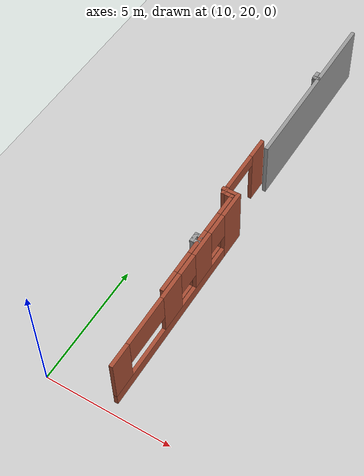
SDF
<sdf version="1.6">
 <world name="default">
  <model name="ground_plane">
   <static>1</static>
   <link name="link">
    <collision name="collision">
     <geometry><plane><normal>0 0 1</normal><size>100 100</size></plane></geometry>
     <surface><friction><ode><mu>100</mu><mu2>50</mu2></ode></friction></surface>
    </collision>
    <visual name="visual">
     <cast_shadows>0</cast_shadows>
     <geometry><plane><normal>0 0 1</normal><size>100 100</size></plane></geometry>
     <material>
      <script><uri>file://media/materials/scripts/gazebo.material</uri><name>Gazebo/Grey</name></script>
     </material>
    </visual>
   </link>
  </model>
  <model name="CVSSP">
   <pose>23.8714 24.094 0 0 -0 0</pose>
   <link name="Wall_17">
    <collision name="Wall_17_Collision">
     <geometry><box><size>7.25 0.15 2.5</size></box></geometry>
     <pose>0 0 1.25 0 -0 0</pose>
    </collision>
    <visual name="Wall_17_Visual">
     <pose>0 0 1.25 0 -0 0</pose>
     <geometry><box><size>7.25 0.15 2.5</size></box></geometry>
     <material>
      <script><uri>file://media/materials/scripts/gazebo.material</uri><name>Gazebo/Grey</name></script>
      <ambient>0.588235 0.588235 0.588235 1</ambient>
     </material>
    </visual>
    <pose>-11.4873 10.485 0 0 0 -1.5708</pose>
   </link>
   <link name="Wall_387">
    <pose>-11.8031 5.68021 0 0 -0 1.5708</pose>
    <visual name="Wall_387_Visual_0">
     <pose>-1.29725 0 1.25 0 -0 0</pose>
     <geometry><box><size>0.353915 0.15 2.5</size></box></geometry>
     <material>
      <script><uri>file://media/materials/scripts/gazebo.material</uri><name>Gazebo/Bricks</name></script>
      <ambient>1 1 1 1</ambient>
     </material>
    </visual>
    <collision name="Wall_387_Collision_0">
     <geometry><box><size>0.353915 0.15 2.5</size></box></geometry>
     <pose>-1.29725 0 1.25 0 -0 0</pose>
    </collision>
    <visual name="Wall_387_Visual_1">
     <pose>1.03174 0 1.25 0 -0 0</pose>
     <geometry><box><size>0.884924 0.15 2.5</size></box></geometry>
     <material>
      <script><uri>file://media/materials/scripts/gazebo.material</uri><name>Gazebo/Bricks</name></script>
      <ambient>1 1 1 1</ambient>
     </material>
    </visual>
    <collision name="Wall_387_Collision_1">
     <geometry><box><size>0.884924 0.15 2.5</size></box></geometry>
     <pose>1.03174 0 1.25 0 -0 0</pose>
    </collision>
    <visual name="Wall_387_Visual_2">
     <pose>-0.265504 0 2.25 0 -0 0</pose>
     <geometry><box><size>1.70957 0.15 0.5</size></box></geometry>
     <material>
      <script><uri>file://media/materials/scripts/gazebo.material</uri><name>Gazebo/Bricks</name></script>
      <ambient>1 1 1 1</ambient>
     </material>
    </visual>
    <collision name="Wall_387_Collision_2">
     <geometry><box><size>1.70957 0.15 0.5</size></box></geometry>
     <pose>-0.265504 0 2.25 0 -0 0</pose>
    </collision>
   </link>
   <link name="Wall_437">
    <collision name="Wall_437_Collision">
     <geometry><box><size>0.5 0.15 2.5</size></box></geometry>
     <pose>0 0 1.25 0 -0 0</pose>
    </collision>
    <visual name="Wall_437_Visual">
     <pose>0 0 1.25 0 -0 0</pose>
     <geometry><box><size>0.5 0.15 2.5</size></box></geometry>
     <material>
      <script><uri>file://media/materials/scripts/gazebo.material</uri><name>Gazebo/Bricks</name></script>
      <ambient>1 1 1 1</ambient>
     </material>
    </visual>
    <pose>-11.6281 4.28101 0 0 -0 0</pose>
   </link>
   <link name="Wall_438">
    <pose>-11.4531 1.98101 0 0 0 -1.5708</pose>
    <visual name="Wall_438_Visual_0">
     <pose>-1.88418 0 1.25 0 -0 0</pose>
     <geometry><box><size>0.981638 0.15 2.5</size></box></geometry>
     <material>
      <script><uri>file://media/materials/scripts/gazebo.material</uri><name>Gazebo/Bricks</name></script>
      <ambient>1 1 1 1</ambient>
     </material>
    </visual>
    <collision name="Wall_438_Collision_0">
     <geometry><box><size>0.981638 0.15 2.5</size></box></geometry>
     <pose>-1.88418 0 1.25 0 -0 0</pose>
    </collision>
    <visual name="Wall_438_Visual_1">
     <pose>0.490819 0 0.25 0 -0 0</pose>
     <geometry><box><size>3.76836 0.15 0.5</size></box></geometry>
     <material>
      <script><uri>file://media/materials/scripts/gazebo.material</uri><name>Gazebo/Bricks</name></script>
      <ambient>1 1 1 1</ambient>
     </material>
    </visual>
    <collision name="Wall_438_Collision_1">
     <geometry><box><size>3.76836 0.15 0.5</size></box></geometry>
     <pose>0.490819 0 0.25 0 -0 0</pose>
    </collision>
    <visual name="Wall_438_Visual_2">
     <pose>0.039676 0 1.5 0 -0 0</pose>
     <geometry><box><size>1.08359 0.15 2</size></box></geometry>
     <material>
      <script><uri>file://media/materials/scripts/gazebo.material</uri><name>Gazebo/Bricks</name></script>
      <ambient>1 1 1 1</ambient>
     </material>
    </visual>
    <collision name="Wall_438_Collision_2">
     <geometry><box><size>1.08359 0.15 2</size></box></geometry>
     <pose>0.039676 0 1.5 0 -0 0</pose>
    </collision>
    <visual name="Wall_438_Visual_3">
     <pose>1.93363 0 1.5 0 -0 0</pose>
     <geometry><box><size>0.882734 0.15 2</size></box></geometry>
     <material>
      <script><uri>file://media/materials/scripts/gazebo.material</uri><name>Gazebo/Bricks</name></script>
      <ambient>1 1 1 1</ambient>
     </material>
    </visual>
    <collision name="Wall_438_Collision_3">
     <geometry><box><size>0.882734 0.15 2</size></box></geometry>
     <pose>1.93363 0 1.5 0 -0 0</pose>
    </collision>
    <visual name="Wall_438_Visual_4">
     <pose>-0.94774 0 1.9 0 -0 0</pose>
     <geometry><box><size>0.891243 0.15 1.2</size></box></geometry>
     <material>
      <script><uri>file://media/materials/scripts/gazebo.material</uri><name>Gazebo/Bricks</name></script>
      <ambient>1 1 1 1</ambient>
     </material>
    </visual>
    <collision name="Wall_438_Collision_4">
     <geometry><box><size>0.891243 0.15 1.2</size></box></geometry>
     <pose>-0.94774 0 1.9 0 -0 0</pose>
    </collision>
    <visual name="Wall_438_Visual_5">
     <pose>1.03687 0 1.9 0 -0 0</pose>
     <geometry><box><size>0.910795 0.15 1.2</size></box></geometry>
     <material>
      <script><uri>file://media/materials/scripts/gazebo.material</uri><name>Gazebo/Bricks</name></script>
      <ambient>1 1 1 1</ambient>
     </material>
    </visual>
    <collision name="Wall_438_Collision_5">
     <geometry><box><size>0.910795 0.15 1.2</size></box></geometry>
     <pose>1.03687 0 1.9 0 -0 0</pose>
    </collision>
   </link>
   <link name="Wall_461">
    <collision name="Wall_461_Collision">
     <geometry><box><size>0.743141 0.15 2.5</size></box></geometry>
     <pose>0 0 1.25 0 -0 0</pose>
    </collision>
    <visual name="Wall_461_Visual">
     <pose>0 0 1.25 0 -0 0</pose>
     <geometry><box><size>0.743141 0.15 2.5</size></box></geometry>
     <material>
      <script><uri>file://media/materials/scripts/gazebo.material</uri><name>Gazebo/Bricks</name></script>
      <ambient>1 1 1 1</ambient>
     </material>
    </visual>
    <pose>-11.5857 4.44568 0 0 -0 0</pose>
   </link>
   <link name="Wall_462">
    <pose>-11.2891 0.422048 0 0 0 -1.5708</pose>
    <visual name="Wall_462_Visual_0">
     <pose>-3.525 0 1.25 0 -0 0</pose>
     <geometry><box><size>1.14727 0.15 2.5</size></box></geometry>
     <material>
      <script><uri>file://media/materials/scripts/gazebo.material</uri><name>Gazebo/Bricks</name></script>
      <ambient>1 1 1 1</ambient>
     </material>
    </visual>
    <collision name="Wall_462_Collision_0">
     <geometry><box><size>1.14727 0.15 2.5</size></box></geometry>
     <pose>-3.525 0 1.25 0 -0 0</pose>
    </collision>
    <visual name="Wall_462_Visual_1">
     <pose>0.573634 0 0.25 0 -0 0</pose>
     <geometry><box><size>7.04999 0.15 0.5</size></box></geometry>
     <material>
      <script><uri>file://media/materials/scripts/gazebo.material</uri><name>Gazebo/Bricks</name></script>
      <ambient>1 1 1 1</ambient>
     </material>
    </visual>
    <collision name="Wall_462_Collision_1">
     <geometry><box><size>7.04999 0.15 0.5</size></box></geometry>
     <pose>0.573634 0 0.25 0 -0 0</pose>
    </collision>
    <visual name="Wall_462_Visual_2">
     <pose>-1.51444 0 1.5 0 -0 0</pose>
     <geometry><box><size>1.07833 0.15 2</size></box></geometry>
     <material>
      <script><uri>file://media/materials/scripts/gazebo.material</uri><name>Gazebo/Bricks</name></script>
      <ambient>1 1 1 1</ambient>
     </material>
    </visual>
    <collision name="Wall_462_Collision_2">
     <geometry><box><size>1.07833 0.15 2</size></box></geometry>
     <pose>-1.51444 0 1.5 0 -0 0</pose>
    </collision>
    <visual name="Wall_462_Visual_3">
     <pose>0.505032 0 1.5 0 -0 0</pose>
     <geometry><box><size>1.11295 0.15 2</size></box></geometry>
     <material>
      <script><uri>file://media/materials/scripts/gazebo.material</uri><name>Gazebo/Bricks</name></script>
      <ambient>1 1 1 1</ambient>
     </material>
    </visual>
    <collision name="Wall_462_Collision_3">
     <geometry><box><size>1.11295 0.15 2</size></box></geometry>
     <pose>0.505032 0 1.5 0 -0 0</pose>
    </collision>
    <visual name="Wall_462_Visual_4">
     <pose>3.60899 0 1.5 0 -0 0</pose>
     <geometry><box><size>0.979272 0.15 2</size></box></geometry>
     <material>
      <script><uri>file://media/materials/scripts/gazebo.material</uri><name>Gazebo/Bricks</name></script>
      <ambient>1 1 1 1</ambient>
     </material>
    </visual>
    <collision name="Wall_462_Collision_4">
     <geometry><box><size>0.979272 0.15 2</size></box></geometry>
     <pose>3.60899 0 1.5 0 -0 0</pose>
    </collision>
    <visual name="Wall_462_Visual_5">
     <pose>-2.50248 0 1.9 0 -0 0</pose>
     <geometry><box><size>0.89776 0.15 1.2</size></box></geometry>
     <material>
      <script><uri>file://media/materials/scripts/gazebo.material</uri><name>Gazebo/Bricks</name></script>
      <ambient>1 1 1 1</ambient>
     </material>
    </visual>
    <collision name="Wall_462_Collision_5">
     <geometry><box><size>0.89776 0.15 1.2</size></box></geometry>
     <pose>-2.50248 0 1.9 0 -0 0</pose>
    </collision>
    <visual name="Wall_462_Visual_6">
     <pose>-0.513357 0 1.9 0 -0 0</pose>
     <geometry><box><size>0.92383 0.15 1.2</size></box></geometry>
     <material>
      <script><uri>file://media/materials/scripts/gazebo.material</uri><name>Gazebo/Bricks</name></script>
      <ambient>1 1 1 1</ambient>
     </material>
    </visual>
    <collision name="Wall_462_Collision_6">
     <geometry><box><size>0.92383 0.15 1.2</size></box></geometry>
     <pose>-0.513357 0 1.9 0 -0 0</pose>
    </collision>
    <visual name="Wall_462_Visual_7">
     <pose>2.09043 0 1.9 0 -0 0</pose>
     <geometry><box><size>2.05785 0.15 1.2</size></box></geometry>
     <material>
      <script><uri>file://media/materials/scripts/gazebo.material</uri><name>Gazebo/Bricks</name></script>
      <ambient>1 1 1 1</ambient>
     </material>
    </visual>
    <collision name="Wall_462_Collision_7">
     <geometry><box><size>2.05785 0.15 1.2</size></box></geometry>
     <pose>2.09043 0 1.9 0 -0 0</pose>
    </collision>
   </link>
   <link name="Wall_692">
    <collision name="Wall_692_Collision">
     <geometry><box><size>0.385736 0.15 2.5</size></box></geometry>
     <pose>0 0 1.25 0 -0 0</pose>
    </collision>
    <visual name="Wall_692_Visual">
     <pose>0 0 1.25 0 -0 0</pose>
     <geometry><box><size>0.385736 0.15 2.5</size></box></geometry>
     <material>
      <script><uri>file://media/materials/scripts/gazebo.material</uri><name>Gazebo/Grey</name></script>
      <ambient>1 1 1 1</ambient>
     </material>
    </visual>
    <pose>-11.6564 11.1743 0 0 -0 1.5708</pose>
   </link>
   <link name="Wall_694">
    <collision name="Wall_694_Collision">
     <geometry><box><size>0.370527 0.15 2.5</size></box></geometry>
     <pose>0 0 1.25 0 -0 0</pose>
    </collision>
    <visual name="Wall_694_Visual">
     <pose>0 0 1.25 0 -0 0</pose>
     <geometry><box><size>0.370527 0.15 2.5</size></box></geometry>
     <material>
      <script><uri>file://media/materials/scripts/gazebo.material</uri><name>Gazebo/Grey</name></script>
      <ambient>1 1 1 1</ambient>
     </material>
    </visual>
    <pose>-11.4967 11.1895 0 0 0 -1.5708</pose>
   </link>
   <link name="Wall_695">
    <collision name="Wall_695_Collision">
     <geometry><box><size>0.303789 0.15 2.5</size></box></geometry>
     <pose>0 0 1.25 0 -0 0</pose>
    </collision>
    <visual name="Wall_695_Visual">
     <pose>0 0 1.25 0 -0 0</pose>
     <geometry><box><size>0.303789 0.15 2.5</size></box></geometry>
     <material>
      <script><uri>file://media/materials/scripts/gazebo.material</uri><name>Gazebo/Grey</name></script>
      <ambient>1 1 1 1</ambient>
     </material>
    </visual>
    <pose>-11.5804 11.0678 0 0 0 -2.9927</pose>
   </link>
   <link name="Wall_718">
    <collision name="Wall_718_Collision">
     <geometry><box><size>0.341762 0.15 2.5</size></box></geometry>
     <pose>0 0 1.25 0 -0 0</pose>
    </collision>
    <visual name="Wall_718_Visual">
     <pose>0 0 1.25 0 -0 0</pose>
     <geometry><box><size>0.341762 0.15 2.5</size></box></geometry>
     <material>
      <script><uri>file://media/materials/scripts/gazebo.material</uri><name>Gazebo/Grey</name></script>
      <ambient>1 1 1 1</ambient>
     </material>
    </visual>
    <pose>-11.5709 2.18477 0 0 -0 3.14159</pose>
   </link>
   <link name="Wall_719">
    <collision name="Wall_719_Collision">
     <geometry><box><size>0.4145 0.15 2.5</size></box></geometry>
     <pose>0 0 1.25 0 -0 0</pose>
    </collision>
    <visual name="Wall_719_Visual">
     <pose>0 0 1.25 0 -0 0</pose>
     <geometry><box><size>0.4145 0.15 2.5</size></box></geometry>
     <material>
      <script><uri>file://media/materials/scripts/gazebo.material</uri><name>Gazebo/Grey</name></script>
      <ambient>1 1 1 1</ambient>
     </material>
    </visual>
    <pose>-11.6667 2.05252 0 0 0 -1.5708</pose>
   </link>
   <link name="Wall_720">
    <collision name="Wall_720_Collision">
     <geometry><box><size>0.394752 0.15 2.5</size></box></geometry>
     <pose>0 0 1.25 0 -0 0</pose>
    </collision>
    <visual name="Wall_720_Visual">
     <pose>0 0 1.25 0 -0 0</pose>
     <geometry><box><size>0.394752 0.15 2.5</size></box></geometry>
     <material>
      <script><uri>file://media/materials/scripts/gazebo.material</uri><name>Gazebo/Grey</name></script>
      <ambient>1 1 1 1</ambient>
     </material>
    </visual>
    <pose>-11.5444 1.92027 0 0 -0 0</pose>
   </link>
   <static>1</static>
  </model>
 </world>
</sdf>
